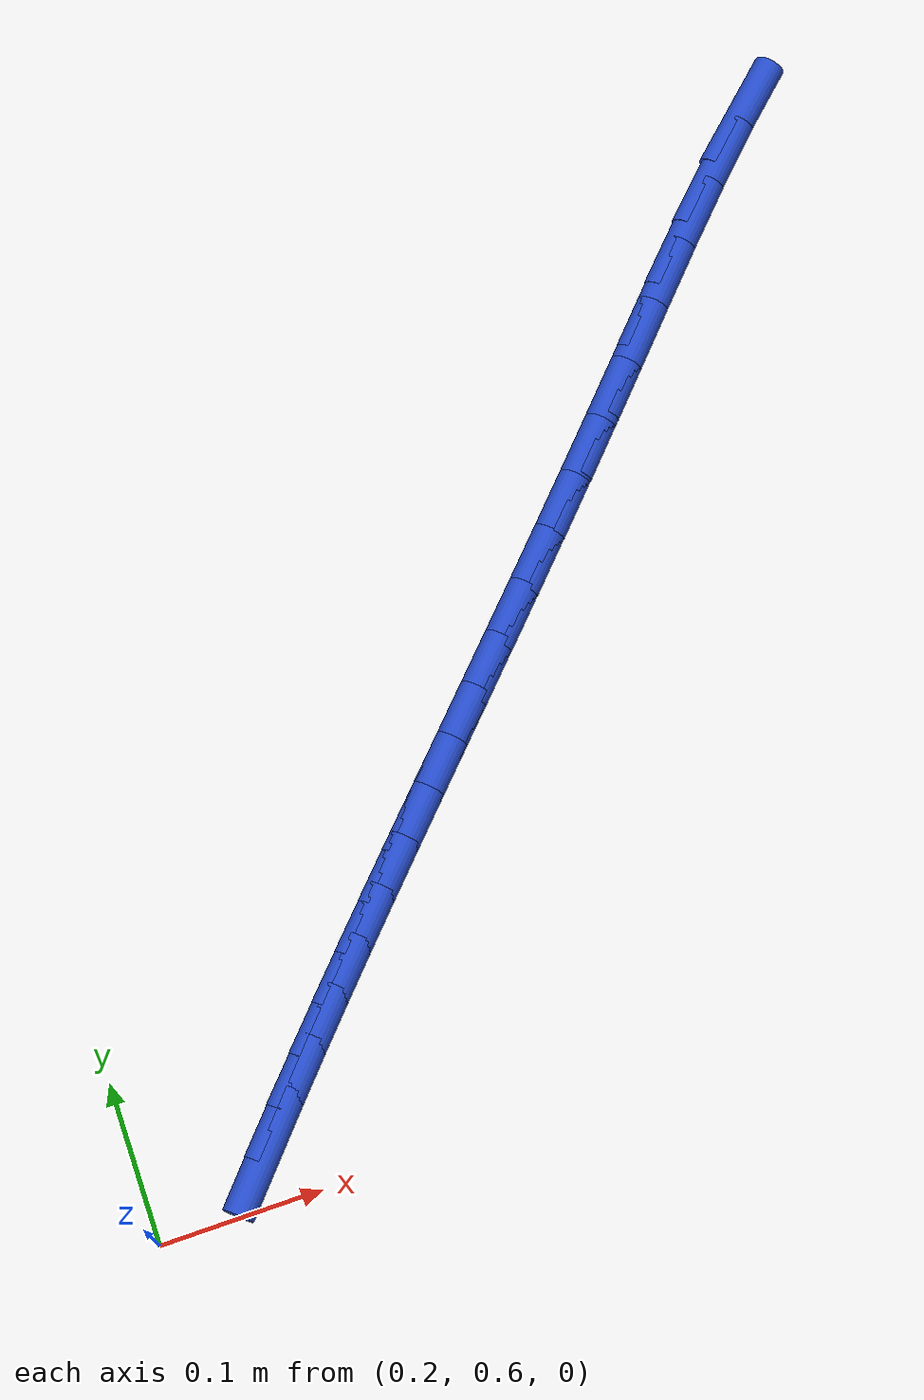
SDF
<sdf version="1.6">
 <world name="default">
  <model name="ground_plane">
   <static>1</static>
   <link name="link">
    <collision name="collision">
     <geometry><plane><normal>0 0 1</normal><size>100 100</size></plane></geometry>
     <surface><friction><ode><mu>100</mu><mu2>50</mu2></ode></friction></surface>
    </collision>
    <visual name="visual">
     <cast_shadows>0</cast_shadows>
     <geometry><plane><normal>0 0 1</normal><size>100 100</size></plane></geometry>
     <material>
      <script><uri>file://media/materials/scripts/gazebo.material</uri><name>Gazebo/WhiteGlow</name></script>
     </material>
    </visual>
   </link>
  </model>
  <model name="line">
   <link name="link_20">
    <pose>0.2748392759086999 0.6307300809483857 0.01 0 1.57 0.8529058107750099</pose>
    <collision name="collision">
     <geometry><cylinder><radius>0.01</radius><length>0.08</length></cylinder></geometry>
    </collision>
    <visual name="visual">
     <material>
      <script><name>Gazebo/Blue</name><uri>file://media/materials/scripts/gazebo.material</uri></script>
     </material>
     <geometry><cylinder><radius>0.01</radius><length>0.08</length></cylinder></geometry>
    </visual>
   </link>
   <link name="link_21">
    <pose>0.2964555067034199 0.6554812280182752 0.01 0 1.57 0.8433941527361055</pose>
    <collision name="collision">
     <geometry><cylinder><radius>0.01</radius><length>0.08</length></cylinder></geometry>
    </collision>
    <visual name="visual">
     <material>
      <script><name>Gazebo/Blue</name><uri>file://media/materials/scripts/gazebo.material</uri></script>
     </material>
     <geometry><cylinder><radius>0.01</radius><length>0.08</length></cylinder></geometry>
    </visual>
   </link>
   <link name="link_22">
    <pose>0.31822812881191803 0.6799379783810215 0.01 0 1.57 0.8350125512757378</pose>
    <collision name="collision">
     <geometry><cylinder><radius>0.01</radius><length>0.08</length></cylinder></geometry>
    </collision>
    <visual name="visual">
     <material>
      <script><name>Gazebo/Blue</name><uri>file://media/materials/scripts/gazebo.material</uri></script>
     </material>
     <geometry><cylinder><radius>0.01</radius><length>0.08</length></cylinder></geometry>
    </visual>
   </link>
   <link name="link_23">
    <pose>0.34021666909586523 0.7042243034947626 0.01 0 1.57 0.8278612711472686</pose>
    <collision name="collision">
     <geometry><cylinder><radius>0.01</radius><length>0.08</length></cylinder></geometry>
    </collision>
    <visual name="visual">
     <material>
      <script><name>Gazebo/Blue</name><uri>file://media/materials/scripts/gazebo.material</uri></script>
     </material>
     <geometry><cylinder><radius>0.01</radius><length>0.08</length></cylinder></geometry>
    </visual>
   </link>
   <link name="link_24">
    <pose>0.3624806544169326 0.7284641748176368 0.01 0 1.57 0.8220093673044713</pose>
    <collision name="collision">
     <geometry><cylinder><radius>0.01</radius><length>0.08</length></cylinder></geometry>
    </collision>
    <visual name="visual">
     <material>
      <script><name>Gazebo/Blue</name><uri>file://media/materials/scripts/gazebo.material</uri></script>
     </material>
     <geometry><cylinder><radius>0.01</radius><length>0.08</length></cylinder></geometry>
    </visual>
   </link>
   <link name="link_25">
    <pose>0.38507961163679116 0.752781563807782 0.01 0 1.57 0.817492952290413</pose>
    <collision name="collision">
     <geometry><cylinder><radius>0.01</radius><length>0.08</length></cylinder></geometry>
    </collision>
    <visual name="visual">
     <material>
      <script><name>Gazebo/Blue</name><uri>file://media/materials/scripts/gazebo.material</uri></script>
     </material>
     <geometry><cylinder><radius>0.01</radius><length>0.08</length></cylinder></geometry>
    </visual>
   </link>
   <link name="link_26">
    <pose>0.40807306761711215 0.7773004419233367 0.01 0 1.57 0.8143154357545993</pose>
    <collision name="collision">
     <geometry><cylinder><radius>0.01</radius><length>0.08</length></cylinder></geometry>
    </collision>
    <visual name="visual">
     <material>
      <script><name>Gazebo/Blue</name><uri>file://media/materials/scripts/gazebo.material</uri></script>
     </material>
     <geometry><cylinder><radius>0.01</radius><length>0.08</length></cylinder></geometry>
    </visual>
   </link>
   <link name="link_27">
    <pose>0.4315205492195664 0.8021447806224388 0.01 0 1.57 0.8124495658760261</pose>
    <collision name="collision">
     <geometry><cylinder><radius>0.01</radius><length>0.08</length></cylinder></geometry>
    </collision>
    <visual name="visual">
     <material>
      <script><name>Gazebo/Blue</name><uri>file://media/materials/scripts/gazebo.material</uri></script>
     </material>
     <geometry><cylinder><radius>0.01</radius><length>0.08</length></cylinder></geometry>
    </visual>
   </link>
   <link name="link_28">
    <pose>0.4554815833058252 0.8274385513632267 0.01 0 1.57 0.8118409420401287</pose>
    <collision name="collision">
     <geometry><cylinder><radius>0.01</radius><length>0.08</length></cylinder></geometry>
    </collision>
    <visual name="visual">
     <material>
      <script><name>Gazebo/Blue</name><uri>file://media/materials/scripts/gazebo.material</uri></script>
     </material>
     <geometry><cylinder><radius>0.01</radius><length>0.08</length></cylinder></geometry>
    </visual>
   </link>
   <link name="link_29">
    <pose>0.48001569673755934 0.8533057256038382 0.01 0 1.57 0.8124125695661213</pose>
    <collision name="collision">
     <geometry><cylinder><radius>0.01</radius><length>0.08</length></cylinder></geometry>
    </collision>
    <visual name="visual">
     <material>
      <script><name>Gazebo/Blue</name><uri>file://media/materials/scripts/gazebo.material</uri></script>
     </material>
     <geometry><cylinder><radius>0.01</radius><length>0.08</length></cylinder></geometry>
    </visual>
   </link>
   <link name="link_30">
    <pose>0.5051824163764401 0.8798702748024116 0.01 0 1.57 0.8140699946064636</pose>
    <collision name="collision">
     <geometry><cylinder><radius>0.01</radius><length>0.08</length></cylinder></geometry>
    </collision>
    <visual name="visual">
     <material>
      <script><name>Gazebo/Blue</name><uri>file://media/materials/scripts/gazebo.material</uri></script>
     </material>
     <geometry><cylinder><radius>0.01</radius><length>0.08</length></cylinder></geometry>
    </visual>
   </link>
   <link name="link_31">
    <pose>0.5310412690841384 0.9072561704170854 0.01 0 1.57 0.8167065826098714</pose>
    <collision name="collision">
     <geometry><cylinder><radius>0.01</radius><length>0.08</length></cylinder></geometry>
    </collision>
    <visual name="visual">
     <material>
      <script><name>Gazebo/Blue</name><uri>file://media/materials/scripts/gazebo.material</uri></script>
     </material>
     <geometry><cylinder><radius>0.01</radius><length>0.08</length></cylinder></geometry>
    </visual>
   </link>
   <link name="link_32">
    <pose>0.5576517817223257 0.9355873839059977 0.01 0 1.57 0.8202085714201305</pose>
    <collision name="collision">
     <geometry><cylinder><radius>0.01</radius><length>0.08</length></cylinder></geometry>
    </collision>
    <visual name="visual">
     <material>
      <script><name>Gazebo/Blue</name><uri>file://media/materials/scripts/gazebo.material</uri></script>
     </material>
     <geometry><cylinder><radius>0.01</radius><length>0.08</length></cylinder></geometry>
    </visual>
   </link>
   <link name="link_33">
    <pose>0.5850734811526723 0.9649878867272863 0.01 0 1.57 0.8244596218350776</pose>
    <collision name="collision">
     <geometry><cylinder><radius>0.01</radius><length>0.08</length></cylinder></geometry>
    </collision>
    <visual name="visual">
     <material>
      <script><name>Gazebo/Blue</name><uri>file://media/materials/scripts/gazebo.material</uri></script>
     </material>
     <geometry><cylinder><radius>0.01</radius><length>0.08</length></cylinder></geometry>
    </visual>
   </link>
   <link name="link_34">
    <pose>0.61336589423685 0.9955816503390893 0.01 0 1.57 0.8293444780642792</pose>
    <collision name="collision">
     <geometry><cylinder><radius>0.01</radius><length>0.08</length></cylinder></geometry>
    </collision>
    <visual name="visual">
     <material>
      <script><name>Gazebo/Blue</name><uri>file://media/materials/scripts/gazebo.material</uri></script>
     </material>
     <geometry><cylinder><radius>0.01</radius><length>0.08</length></cylinder></geometry>
    </visual>
   </link>
   <link name="link_35">
    <pose>0.6425885422428071 1.027492626697952 0.01 0 1.57 0.8327669592573147</pose>
    <collision name="collision">
     <geometry><cylinder><radius>0.01</radius><length>0.08</length></cylinder></geometry>
    </collision>
    <visual name="visual">
     <material>
      <script><name>Gazebo/Blue</name><uri>file://media/materials/scripts/gazebo.material</uri></script>
     </material>
     <geometry><cylinder><radius>0.01</radius><length>0.08</length></cylinder></geometry>
    </visual>
   </link>
   <link name="link_36">
    <pose>0.672745306359458 1.060650787763983 0.01 0 1.57 0.8281542361408051</pose>
    <collision name="collision">
     <geometry><cylinder><radius>0.01</radius><length>0.08</length></cylinder></geometry>
    </collision>
    <visual name="visual">
     <material>
      <script><name>Gazebo/Blue</name><uri>file://media/materials/scripts/gazebo.material</uri></script>
     </material>
     <geometry><cylinder><radius>0.01</radius><length>0.08</length></cylinder></geometry>
    </visual>
   </link>
   <link name="link_37">
    <pose>0.7036477224962082 1.0943155252738246 0.01 0 1.57 0.8142575172836231</pose>
    <collision name="collision">
     <geometry><cylinder><radius>0.01</radius><length>0.08</length></cylinder></geometry>
    </collision>
    <visual name="visual">
     <material>
      <script><name>Gazebo/Blue</name><uri>file://media/materials/scripts/gazebo.material</uri></script>
     </material>
     <geometry><cylinder><radius>0.01</radius><length>0.08</length></cylinder></geometry>
    </visual>
   </link>
   <link name="link_38">
    <pose>0.7350657922717315 1.1276014284816642 0.01 0 1.57 0.7903872348356703</pose>
    <collision name="collision">
     <geometry><cylinder><radius>0.01</radius><length>0.08</length></cylinder></geometry>
    </collision>
    <visual name="visual">
     <material>
      <script><name>Gazebo/Blue</name><uri>file://media/materials/scripts/gazebo.material</uri></script>
     </material>
     <geometry><cylinder><radius>0.01</radius><length>0.08</length></cylinder></geometry>
    </visual>
   </link>
   <link name="link_39">
    <pose>0.7667695173047027 1.1596230866416912 0.01 0 1.57 0.7547840550857329</pose>
    <collision name="collision">
     <geometry><cylinder><radius>0.01</radius><length>0.08</length></cylinder></geometry>
    </collision>
    <visual name="visual">
     <material>
      <script><name>Gazebo/Blue</name><uri>file://media/materials/scripts/gazebo.material</uri></script>
     </material>
     <geometry><cylinder><radius>0.01</radius><length>0.08</length></cylinder></geometry>
    </visual>
   </link>
  </model>
 </world>
</sdf>
